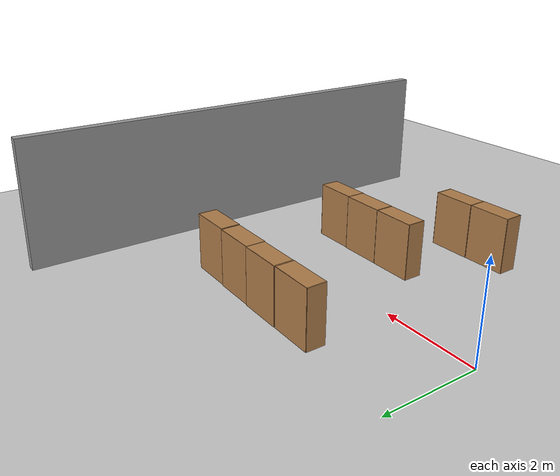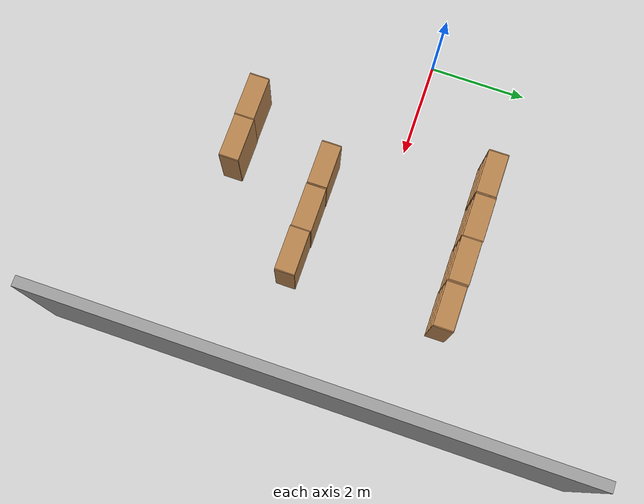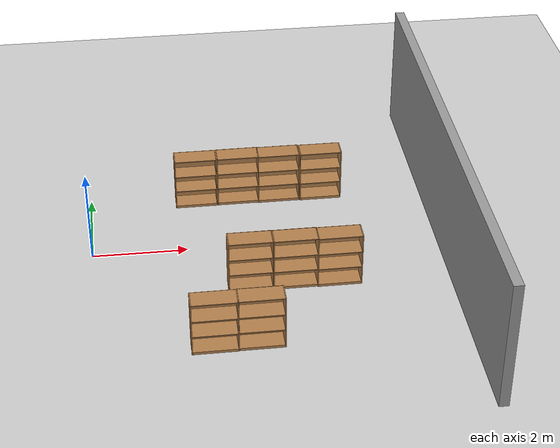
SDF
<sdf version="1.7">
 <world name="default">
  <model name="ground_plane">
   <static>1</static>
   <link name="link">
    <collision name="collision">
     <geometry><plane><normal>0 0 1</normal><size>100 100</size></plane></geometry>
     <surface><friction><ode><mu>100</mu><mu2>50</mu2></ode></friction></surface>
    </collision>
    <visual name="visual">
     <cast_shadows>0</cast_shadows>
     <geometry><plane><normal>0 0 1</normal><size>100 100</size></plane></geometry>
     <material>
      <script><uri>file://media/materials/scripts/gazebo.material</uri><name>Gazebo/Grey</name></script>
     </material>
    </visual>
   </link>
  </model>
  <model name="grey_wall_2_clone">
   <link name="link">
    <pose>-1.42165 -0.037006 1.4 0 -0 0</pose>
    <inertial>
     <inertia><ixx>0</ixx><ixy>0</ixy><ixz>0</ixz><iyy>0</iyy><iyz>0</iyz><izz>0</izz></inertia>
     <mass>0</mass>
    </inertial>
    <visual name="visual">
     <cast_shadows>0</cast_shadows>
     <geometry><box><size>10.349 0.2 2.8</size></box></geometry>
     <material>
      <script>
       <uri>model://grey_wall/materials/scripts</uri>
       <uri>model://grey_wall/materials/textures</uri>
       <name>vrc/grey_wall</name>
      </script>
      <shader type="pixel"/>
     </material>
    </visual>
    <collision name="collision">
     <geometry><box><size>10.349 0.2 2.8</size></box></geometry>
     <surface>
      <friction>
       <ode><mu>1</mu><mu2>1</mu2><fdir1>0 0 0</fdir1><slip1>0</slip1><slip2>0</slip2></ode>
       <torsional>
        <coefficient>1</coefficient>
        <patch_radius>0</patch_radius>
        <surface_radius>0</surface_radius>
        <use_patch_radius>1</use_patch_radius>
        <ode><slip>0</slip></ode>
       </torsional>
      </friction>
      <bounce><restitution_coefficient>0</restitution_coefficient><threshold>1e+06</threshold></bounce>
      <contact>
       <collide_without_contact>0</collide_without_contact>
       <collide_without_contact_bitmask>1</collide_without_contact_bitmask>
       <collide_bitmask>1</collide_bitmask>
       <ode>
        <soft_cfm>0</soft_cfm>
        <soft_erp>0.2</soft_erp>
        <kp>1e+13</kp>
        <kd>1</kd>
        <max_vel>0.01</max_vel>
        <min_depth>0</min_depth>
       </ode>
       <bullet>
        <split_impulse>1</split_impulse>
        <split_impulse_penetration_threshold>-0.01</split_impulse_penetration_threshold>
        <soft_cfm>0</soft_cfm>
        <soft_erp>0.2</soft_erp>
        <kp>1e+13</kp>
        <kd>1</kd>
       </bullet>
      </contact>
     </surface>
    </collision>
   </link>
   <static>1</static>
   <pose>7.44515 -1.72145 0 0 0 -1.56841</pose>
  </model>
  <model name="bookshelf_0_clone_0">
   <static>1</static>
   <link name="link">
    <inertial><mass>1</mass></inertial>
    <collision name="back">
     <pose>0 0.005 0.6 0 -0 0</pose>
     <geometry><box><size>0.9 0.01 1.2</size></box></geometry>
    </collision>
    <visual name="visual1">
     <pose>0 0.005 0.6 0 -0 0</pose>
     <geometry><box><size>0.9 0.01 1.2</size></box></geometry>
     <material>
      <script><uri>file://media/materials/scripts/gazebo.material</uri><name>Gazebo/Wood</name></script>
     </material>
    </visual>
    <collision name="left_side">
     <pose>0.45 -0.195 0.6 0 -0 0</pose>
     <geometry><box><size>0.02 0.4 1.2</size></box></geometry>
    </collision>
    <visual name="visual2">
     <pose>0.45 -0.195 0.6 0 -0 0</pose>
     <geometry><box><size>0.02 0.4 1.2</size></box></geometry>
     <material>
      <script><uri>file://media/materials/scripts/gazebo.material</uri><name>Gazebo/Wood</name></script>
     </material>
    </visual>
    <collision name="right_side">
     <pose>-0.45 -0.195 0.6 0 -0 0</pose>
     <geometry><box><size>0.02 0.4 1.2</size></box></geometry>
    </collision>
    <visual name="visual3">
     <pose>-0.45 -0.195 0.6 0 -0 0</pose>
     <geometry><box><size>0.02 0.4 1.2</size></box></geometry>
     <material>
      <script><uri>file://media/materials/scripts/gazebo.material</uri><name>Gazebo/Wood</name></script>
     </material>
    </visual>
    <collision name="bottom">
     <pose>0 -0.195 0.03 0 -0 0</pose>
     <geometry><box><size>0.88 0.4 0.06</size></box></geometry>
    </collision>
    <visual name="visual4">
     <pose>0 -0.195 0.03 0 -0 0</pose>
     <geometry><box><size>0.88 0.4 0.06</size></box></geometry>
     <material>
      <script><uri>file://media/materials/scripts/gazebo.material</uri><name>Gazebo/Wood</name></script>
     </material>
    </visual>
    <collision name="top">
     <pose>0 -0.195 1.19 0 -0 0</pose>
     <geometry><box><size>0.88 0.4 0.02</size></box></geometry>
    </collision>
    <visual name="visual5">
     <pose>0 -0.195 1.19 0 -0 0</pose>
     <geometry><box><size>0.88 0.4 0.02</size></box></geometry>
     <material>
      <script><uri>file://media/materials/scripts/gazebo.material</uri><name>Gazebo/Wood</name></script>
     </material>
    </visual>
    <collision name="low_shelf">
     <pose>0 -0.195 0.43 0 -0 0</pose>
     <geometry><box><size>0.88 0.4 0.02</size></box></geometry>
    </collision>
    <visual name="visual6">
     <pose>0 -0.195 0.43 0 -0 0</pose>
     <geometry><box><size>0.88 0.4 0.02</size></box></geometry>
     <material>
      <script><uri>file://media/materials/scripts/gazebo.material</uri><name>Gazebo/Wood</name></script>
     </material>
    </visual>
    <collision name="high_shelf">
     <pose>0 -0.195 0.8 0 -0 0</pose>
     <geometry><box><size>0.88 0.4 0.02</size></box></geometry>
    </collision>
    <visual name="visual7">
     <pose>0 -0.195 0.8 0 -0 0</pose>
     <geometry><box><size>0.88 0.4 0.02</size></box></geometry>
     <material>
      <script><uri>file://media/materials/scripts/gazebo.material</uri><name>Gazebo/Wood</name></script>
     </material>
    </visual>
   </link>
   <pose>2.31533 1.94487 0 0 -0 0</pose>
  </model>
  <model name="bookshelf_0_clone_1">
   <static>1</static>
   <link name="link">
    <inertial><mass>1</mass></inertial>
    <collision name="back">
     <pose>0 0.005 0.6 0 -0 0</pose>
     <geometry><box><size>0.9 0.01 1.2</size></box></geometry>
    </collision>
    <visual name="visual1">
     <pose>0 0.005 0.6 0 -0 0</pose>
     <geometry><box><size>0.9 0.01 1.2</size></box></geometry>
     <material>
      <script><uri>file://media/materials/scripts/gazebo.material</uri><name>Gazebo/Wood</name></script>
     </material>
    </visual>
    <collision name="left_side">
     <pose>0.45 -0.195 0.6 0 -0 0</pose>
     <geometry><box><size>0.02 0.4 1.2</size></box></geometry>
    </collision>
    <visual name="visual2">
     <pose>0.45 -0.195 0.6 0 -0 0</pose>
     <geometry><box><size>0.02 0.4 1.2</size></box></geometry>
     <material>
      <script><uri>file://media/materials/scripts/gazebo.material</uri><name>Gazebo/Wood</name></script>
     </material>
    </visual>
    <collision name="right_side">
     <pose>-0.45 -0.195 0.6 0 -0 0</pose>
     <geometry><box><size>0.02 0.4 1.2</size></box></geometry>
    </collision>
    <visual name="visual3">
     <pose>-0.45 -0.195 0.6 0 -0 0</pose>
     <geometry><box><size>0.02 0.4 1.2</size></box></geometry>
     <material>
      <script><uri>file://media/materials/scripts/gazebo.material</uri><name>Gazebo/Wood</name></script>
     </material>
    </visual>
    <collision name="bottom">
     <pose>0 -0.195 0.03 0 -0 0</pose>
     <geometry><box><size>0.88 0.4 0.06</size></box></geometry>
    </collision>
    <visual name="visual4">
     <pose>0 -0.195 0.03 0 -0 0</pose>
     <geometry><box><size>0.88 0.4 0.06</size></box></geometry>
     <material>
      <script><uri>file://media/materials/scripts/gazebo.material</uri><name>Gazebo/Wood</name></script>
     </material>
    </visual>
    <collision name="top">
     <pose>0 -0.195 1.19 0 -0 0</pose>
     <geometry><box><size>0.88 0.4 0.02</size></box></geometry>
    </collision>
    <visual name="visual5">
     <pose>0 -0.195 1.19 0 -0 0</pose>
     <geometry><box><size>0.88 0.4 0.02</size></box></geometry>
     <material>
      <script><uri>file://media/materials/scripts/gazebo.material</uri><name>Gazebo/Wood</name></script>
     </material>
    </visual>
    <collision name="low_shelf">
     <pose>0 -0.195 0.43 0 -0 0</pose>
     <geometry><box><size>0.88 0.4 0.02</size></box></geometry>
    </collision>
    <visual name="visual6">
     <pose>0 -0.195 0.43 0 -0 0</pose>
     <geometry><box><size>0.88 0.4 0.02</size></box></geometry>
     <material>
      <script><uri>file://media/materials/scripts/gazebo.material</uri><name>Gazebo/Wood</name></script>
     </material>
    </visual>
    <collision name="high_shelf">
     <pose>0 -0.195 0.8 0 -0 0</pose>
     <geometry><box><size>0.88 0.4 0.02</size></box></geometry>
    </collision>
    <visual name="visual7">
     <pose>0 -0.195 0.8 0 -0 0</pose>
     <geometry><box><size>0.88 0.4 0.02</size></box></geometry>
     <material>
      <script><uri>file://media/materials/scripts/gazebo.material</uri><name>Gazebo/Wood</name></script>
     </material>
    </visual>
   </link>
   <pose>3.23601 1.95093 0 0 -0 0</pose>
  </model>
  <model name="bookshelf_0_clone_2">
   <static>1</static>
   <link name="link">
    <inertial><mass>1</mass></inertial>
    <collision name="back">
     <pose>0 0.005 0.6 0 -0 0</pose>
     <geometry><box><size>0.9 0.01 1.2</size></box></geometry>
    </collision>
    <visual name="visual1">
     <pose>0 0.005 0.6 0 -0 0</pose>
     <geometry><box><size>0.9 0.01 1.2</size></box></geometry>
     <material>
      <script><uri>file://media/materials/scripts/gazebo.material</uri><name>Gazebo/Wood</name></script>
     </material>
    </visual>
    <collision name="left_side">
     <pose>0.45 -0.195 0.6 0 -0 0</pose>
     <geometry><box><size>0.02 0.4 1.2</size></box></geometry>
    </collision>
    <visual name="visual2">
     <pose>0.45 -0.195 0.6 0 -0 0</pose>
     <geometry><box><size>0.02 0.4 1.2</size></box></geometry>
     <material>
      <script><uri>file://media/materials/scripts/gazebo.material</uri><name>Gazebo/Wood</name></script>
     </material>
    </visual>
    <collision name="right_side">
     <pose>-0.45 -0.195 0.6 0 -0 0</pose>
     <geometry><box><size>0.02 0.4 1.2</size></box></geometry>
    </collision>
    <visual name="visual3">
     <pose>-0.45 -0.195 0.6 0 -0 0</pose>
     <geometry><box><size>0.02 0.4 1.2</size></box></geometry>
     <material>
      <script><uri>file://media/materials/scripts/gazebo.material</uri><name>Gazebo/Wood</name></script>
     </material>
    </visual>
    <collision name="bottom">
     <pose>0 -0.195 0.03 0 -0 0</pose>
     <geometry><box><size>0.88 0.4 0.06</size></box></geometry>
    </collision>
    <visual name="visual4">
     <pose>0 -0.195 0.03 0 -0 0</pose>
     <geometry><box><size>0.88 0.4 0.06</size></box></geometry>
     <material>
      <script><uri>file://media/materials/scripts/gazebo.material</uri><name>Gazebo/Wood</name></script>
     </material>
    </visual>
    <collision name="top">
     <pose>0 -0.195 1.19 0 -0 0</pose>
     <geometry><box><size>0.88 0.4 0.02</size></box></geometry>
    </collision>
    <visual name="visual5">
     <pose>0 -0.195 1.19 0 -0 0</pose>
     <geometry><box><size>0.88 0.4 0.02</size></box></geometry>
     <material>
      <script><uri>file://media/materials/scripts/gazebo.material</uri><name>Gazebo/Wood</name></script>
     </material>
    </visual>
    <collision name="low_shelf">
     <pose>0 -0.195 0.43 0 -0 0</pose>
     <geometry><box><size>0.88 0.4 0.02</size></box></geometry>
    </collision>
    <visual name="visual6">
     <pose>0 -0.195 0.43 0 -0 0</pose>
     <geometry><box><size>0.88 0.4 0.02</size></box></geometry>
     <material>
      <script><uri>file://media/materials/scripts/gazebo.material</uri><name>Gazebo/Wood</name></script>
     </material>
    </visual>
    <collision name="high_shelf">
     <pose>0 -0.195 0.8 0 -0 0</pose>
     <geometry><box><size>0.88 0.4 0.02</size></box></geometry>
    </collision>
    <visual name="visual7">
     <pose>0 -0.195 0.8 0 -0 0</pose>
     <geometry><box><size>0.88 0.4 0.02</size></box></geometry>
     <material>
      <script><uri>file://media/materials/scripts/gazebo.material</uri><name>Gazebo/Wood</name></script>
     </material>
    </visual>
   </link>
   <pose>4.13486 1.93847 0 0 -0 0</pose>
  </model>
  <model name="bookshelf_0_clone_3">
   <static>1</static>
   <link name="link">
    <inertial><mass>1</mass></inertial>
    <collision name="back">
     <pose>0 0.005 0.6 0 -0 0</pose>
     <geometry><box><size>0.9 0.01 1.2</size></box></geometry>
    </collision>
    <visual name="visual1">
     <pose>0 0.005 0.6 0 -0 0</pose>
     <geometry><box><size>0.9 0.01 1.2</size></box></geometry>
     <material>
      <script><uri>file://media/materials/scripts/gazebo.material</uri><name>Gazebo/Wood</name></script>
     </material>
    </visual>
    <collision name="left_side">
     <pose>0.45 -0.195 0.6 0 -0 0</pose>
     <geometry><box><size>0.02 0.4 1.2</size></box></geometry>
    </collision>
    <visual name="visual2">
     <pose>0.45 -0.195 0.6 0 -0 0</pose>
     <geometry><box><size>0.02 0.4 1.2</size></box></geometry>
     <material>
      <script><uri>file://media/materials/scripts/gazebo.material</uri><name>Gazebo/Wood</name></script>
     </material>
    </visual>
    <collision name="right_side">
     <pose>-0.45 -0.195 0.6 0 -0 0</pose>
     <geometry><box><size>0.02 0.4 1.2</size></box></geometry>
    </collision>
    <visual name="visual3">
     <pose>-0.45 -0.195 0.6 0 -0 0</pose>
     <geometry><box><size>0.02 0.4 1.2</size></box></geometry>
     <material>
      <script><uri>file://media/materials/scripts/gazebo.material</uri><name>Gazebo/Wood</name></script>
     </material>
    </visual>
    <collision name="bottom">
     <pose>0 -0.195 0.03 0 -0 0</pose>
     <geometry><box><size>0.88 0.4 0.06</size></box></geometry>
    </collision>
    <visual name="visual4">
     <pose>0 -0.195 0.03 0 -0 0</pose>
     <geometry><box><size>0.88 0.4 0.06</size></box></geometry>
     <material>
      <script><uri>file://media/materials/scripts/gazebo.material</uri><name>Gazebo/Wood</name></script>
     </material>
    </visual>
    <collision name="top">
     <pose>0 -0.195 1.19 0 -0 0</pose>
     <geometry><box><size>0.88 0.4 0.02</size></box></geometry>
    </collision>
    <visual name="visual5">
     <pose>0 -0.195 1.19 0 -0 0</pose>
     <geometry><box><size>0.88 0.4 0.02</size></box></geometry>
     <material>
      <script><uri>file://media/materials/scripts/gazebo.material</uri><name>Gazebo/Wood</name></script>
     </material>
    </visual>
    <collision name="low_shelf">
     <pose>0 -0.195 0.43 0 -0 0</pose>
     <geometry><box><size>0.88 0.4 0.02</size></box></geometry>
    </collision>
    <visual name="visual6">
     <pose>0 -0.195 0.43 0 -0 0</pose>
     <geometry><box><size>0.88 0.4 0.02</size></box></geometry>
     <material>
      <script><uri>file://media/materials/scripts/gazebo.material</uri><name>Gazebo/Wood</name></script>
     </material>
    </visual>
    <collision name="high_shelf">
     <pose>0 -0.195 0.8 0 -0 0</pose>
     <geometry><box><size>0.88 0.4 0.02</size></box></geometry>
    </collision>
    <visual name="visual7">
     <pose>0 -0.195 0.8 0 -0 0</pose>
     <geometry><box><size>0.88 0.4 0.02</size></box></geometry>
     <material>
      <script><uri>file://media/materials/scripts/gazebo.material</uri><name>Gazebo/Wood</name></script>
     </material>
    </visual>
   </link>
   <pose>5.06003 1.92327 0 0 -0 0</pose>
  </model>
  <model name="bookshelf_0_clone_8">
   <static>1</static>
   <link name="link">
    <inertial><mass>1</mass></inertial>
    <collision name="back">
     <pose>0 0.005 0.6 0 -0 0</pose>
     <geometry><box><size>0.9 0.01 1.2</size></box></geometry>
    </collision>
    <visual name="visual1">
     <pose>0 0.005 0.6 0 -0 0</pose>
     <geometry><box><size>0.9 0.01 1.2</size></box></geometry>
     <material>
      <script><uri>file://media/materials/scripts/gazebo.material</uri><name>Gazebo/Wood</name></script>
     </material>
    </visual>
    <collision name="left_side">
     <pose>0.45 -0.195 0.6 0 -0 0</pose>
     <geometry><box><size>0.02 0.4 1.2</size></box></geometry>
    </collision>
    <visual name="visual2">
     <pose>0.45 -0.195 0.6 0 -0 0</pose>
     <geometry><box><size>0.02 0.4 1.2</size></box></geometry>
     <material>
      <script><uri>file://media/materials/scripts/gazebo.material</uri><name>Gazebo/Wood</name></script>
     </material>
    </visual>
    <collision name="right_side">
     <pose>-0.45 -0.195 0.6 0 -0 0</pose>
     <geometry><box><size>0.02 0.4 1.2</size></box></geometry>
    </collision>
    <visual name="visual3">
     <pose>-0.45 -0.195 0.6 0 -0 0</pose>
     <geometry><box><size>0.02 0.4 1.2</size></box></geometry>
     <material>
      <script><uri>file://media/materials/scripts/gazebo.material</uri><name>Gazebo/Wood</name></script>
     </material>
    </visual>
    <collision name="bottom">
     <pose>0 -0.195 0.03 0 -0 0</pose>
     <geometry><box><size>0.88 0.4 0.06</size></box></geometry>
    </collision>
    <visual name="visual4">
     <pose>0 -0.195 0.03 0 -0 0</pose>
     <geometry><box><size>0.88 0.4 0.06</size></box></geometry>
     <material>
      <script><uri>file://media/materials/scripts/gazebo.material</uri><name>Gazebo/Wood</name></script>
     </material>
    </visual>
    <collision name="top">
     <pose>0 -0.195 1.19 0 -0 0</pose>
     <geometry><box><size>0.88 0.4 0.02</size></box></geometry>
    </collision>
    <visual name="visual5">
     <pose>0 -0.195 1.19 0 -0 0</pose>
     <geometry><box><size>0.88 0.4 0.02</size></box></geometry>
     <material>
      <script><uri>file://media/materials/scripts/gazebo.material</uri><name>Gazebo/Wood</name></script>
     </material>
    </visual>
    <collision name="low_shelf">
     <pose>0 -0.195 0.43 0 -0 0</pose>
     <geometry><box><size>0.88 0.4 0.02</size></box></geometry>
    </collision>
    <visual name="visual6">
     <pose>0 -0.195 0.43 0 -0 0</pose>
     <geometry><box><size>0.88 0.4 0.02</size></box></geometry>
     <material>
      <script><uri>file://media/materials/scripts/gazebo.material</uri><name>Gazebo/Wood</name></script>
     </material>
    </visual>
    <collision name="high_shelf">
     <pose>0 -0.195 0.8 0 -0 0</pose>
     <geometry><box><size>0.88 0.4 0.02</size></box></geometry>
    </collision>
    <visual name="visual7">
     <pose>0 -0.195 0.8 0 -0 0</pose>
     <geometry><box><size>0.88 0.4 0.02</size></box></geometry>
     <material>
      <script><uri>file://media/materials/scripts/gazebo.material</uri><name>Gazebo/Wood</name></script>
     </material>
    </visual>
   </link>
   <pose>3.19551 -1.17248 0 0 -0 0</pose>
  </model>
  <model name="bookshelf_0_clone_9">
   <static>1</static>
   <link name="link">
    <inertial><mass>1</mass></inertial>
    <collision name="back">
     <pose>0 0.005 0.6 0 -0 0</pose>
     <geometry><box><size>0.9 0.01 1.2</size></box></geometry>
    </collision>
    <visual name="visual1">
     <pose>0 0.005 0.6 0 -0 0</pose>
     <geometry><box><size>0.9 0.01 1.2</size></box></geometry>
     <material>
      <script><uri>file://media/materials/scripts/gazebo.material</uri><name>Gazebo/Wood</name></script>
     </material>
    </visual>
    <collision name="left_side">
     <pose>0.45 -0.195 0.6 0 -0 0</pose>
     <geometry><box><size>0.02 0.4 1.2</size></box></geometry>
    </collision>
    <visual name="visual2">
     <pose>0.45 -0.195 0.6 0 -0 0</pose>
     <geometry><box><size>0.02 0.4 1.2</size></box></geometry>
     <material>
      <script><uri>file://media/materials/scripts/gazebo.material</uri><name>Gazebo/Wood</name></script>
     </material>
    </visual>
    <collision name="right_side">
     <pose>-0.45 -0.195 0.6 0 -0 0</pose>
     <geometry><box><size>0.02 0.4 1.2</size></box></geometry>
    </collision>
    <visual name="visual3">
     <pose>-0.45 -0.195 0.6 0 -0 0</pose>
     <geometry><box><size>0.02 0.4 1.2</size></box></geometry>
     <material>
      <script><uri>file://media/materials/scripts/gazebo.material</uri><name>Gazebo/Wood</name></script>
     </material>
    </visual>
    <collision name="bottom">
     <pose>0 -0.195 0.03 0 -0 0</pose>
     <geometry><box><size>0.88 0.4 0.06</size></box></geometry>
    </collision>
    <visual name="visual4">
     <pose>0 -0.195 0.03 0 -0 0</pose>
     <geometry><box><size>0.88 0.4 0.06</size></box></geometry>
     <material>
      <script><uri>file://media/materials/scripts/gazebo.material</uri><name>Gazebo/Wood</name></script>
     </material>
    </visual>
    <collision name="top">
     <pose>0 -0.195 1.19 0 -0 0</pose>
     <geometry><box><size>0.88 0.4 0.02</size></box></geometry>
    </collision>
    <visual name="visual5">
     <pose>0 -0.195 1.19 0 -0 0</pose>
     <geometry><box><size>0.88 0.4 0.02</size></box></geometry>
     <material>
      <script><uri>file://media/materials/scripts/gazebo.material</uri><name>Gazebo/Wood</name></script>
     </material>
    </visual>
    <collision name="low_shelf">
     <pose>0 -0.195 0.43 0 -0 0</pose>
     <geometry><box><size>0.88 0.4 0.02</size></box></geometry>
    </collision>
    <visual name="visual6">
     <pose>0 -0.195 0.43 0 -0 0</pose>
     <geometry><box><size>0.88 0.4 0.02</size></box></geometry>
     <material>
      <script><uri>file://media/materials/scripts/gazebo.material</uri><name>Gazebo/Wood</name></script>
     </material>
    </visual>
    <collision name="high_shelf">
     <pose>0 -0.195 0.8 0 -0 0</pose>
     <geometry><box><size>0.88 0.4 0.02</size></box></geometry>
    </collision>
    <visual name="visual7">
     <pose>0 -0.195 0.8 0 -0 0</pose>
     <geometry><box><size>0.88 0.4 0.02</size></box></geometry>
     <material>
      <script><uri>file://media/materials/scripts/gazebo.material</uri><name>Gazebo/Wood</name></script>
     </material>
    </visual>
   </link>
   <pose>4.10914 -1.17806 0 0 -0 0</pose>
  </model>
  <model name="bookshelf_0_clone_10">
   <static>1</static>
   <link name="link">
    <inertial><mass>1</mass></inertial>
    <collision name="back">
     <pose>0 0.005 0.6 0 -0 0</pose>
     <geometry><box><size>0.9 0.01 1.2</size></box></geometry>
    </collision>
    <visual name="visual1">
     <pose>0 0.005 0.6 0 -0 0</pose>
     <geometry><box><size>0.9 0.01 1.2</size></box></geometry>
     <material>
      <script><uri>file://media/materials/scripts/gazebo.material</uri><name>Gazebo/Wood</name></script>
     </material>
    </visual>
    <collision name="left_side">
     <pose>0.45 -0.195 0.6 0 -0 0</pose>
     <geometry><box><size>0.02 0.4 1.2</size></box></geometry>
    </collision>
    <visual name="visual2">
     <pose>0.45 -0.195 0.6 0 -0 0</pose>
     <geometry><box><size>0.02 0.4 1.2</size></box></geometry>
     <material>
      <script><uri>file://media/materials/scripts/gazebo.material</uri><name>Gazebo/Wood</name></script>
     </material>
    </visual>
    <collision name="right_side">
     <pose>-0.45 -0.195 0.6 0 -0 0</pose>
     <geometry><box><size>0.02 0.4 1.2</size></box></geometry>
    </collision>
    <visual name="visual3">
     <pose>-0.45 -0.195 0.6 0 -0 0</pose>
     <geometry><box><size>0.02 0.4 1.2</size></box></geometry>
     <material>
      <script><uri>file://media/materials/scripts/gazebo.material</uri><name>Gazebo/Wood</name></script>
     </material>
    </visual>
    <collision name="bottom">
     <pose>0 -0.195 0.03 0 -0 0</pose>
     <geometry><box><size>0.88 0.4 0.06</size></box></geometry>
    </collision>
    <visual name="visual4">
     <pose>0 -0.195 0.03 0 -0 0</pose>
     <geometry><box><size>0.88 0.4 0.06</size></box></geometry>
     <material>
      <script><uri>file://media/materials/scripts/gazebo.material</uri><name>Gazebo/Wood</name></script>
     </material>
    </visual>
    <collision name="top">
     <pose>0 -0.195 1.19 0 -0 0</pose>
     <geometry><box><size>0.88 0.4 0.02</size></box></geometry>
    </collision>
    <visual name="visual5">
     <pose>0 -0.195 1.19 0 -0 0</pose>
     <geometry><box><size>0.88 0.4 0.02</size></box></geometry>
     <material>
      <script><uri>file://media/materials/scripts/gazebo.material</uri><name>Gazebo/Wood</name></script>
     </material>
    </visual>
    <collision name="low_shelf">
     <pose>0 -0.195 0.43 0 -0 0</pose>
     <geometry><box><size>0.88 0.4 0.02</size></box></geometry>
    </collision>
    <visual name="visual6">
     <pose>0 -0.195 0.43 0 -0 0</pose>
     <geometry><box><size>0.88 0.4 0.02</size></box></geometry>
     <material>
      <script><uri>file://media/materials/scripts/gazebo.material</uri><name>Gazebo/Wood</name></script>
     </material>
    </visual>
    <collision name="high_shelf">
     <pose>0 -0.195 0.8 0 -0 0</pose>
     <geometry><box><size>0.88 0.4 0.02</size></box></geometry>
    </collision>
    <visual name="visual7">
     <pose>0 -0.195 0.8 0 -0 0</pose>
     <geometry><box><size>0.88 0.4 0.02</size></box></geometry>
     <material>
      <script><uri>file://media/materials/scripts/gazebo.material</uri><name>Gazebo/Wood</name></script>
     </material>
    </visual>
   </link>
   <pose>5.00875 -1.19371 0 0 -0 0</pose>
  </model>
  <model name="bookshelf_0_clone_12">
   <static>1</static>
   <link name="link">
    <inertial><mass>1</mass></inertial>
    <collision name="back">
     <pose>0 0.005 0.6 0 -0 0</pose>
     <geometry><box><size>0.9 0.01 1.2</size></box></geometry>
    </collision>
    <visual name="visual1">
     <pose>0 0.005 0.6 0 -0 0</pose>
     <geometry><box><size>0.9 0.01 1.2</size></box></geometry>
     <material>
      <script><uri>file://media/materials/scripts/gazebo.material</uri><name>Gazebo/Wood</name></script>
     </material>
    </visual>
    <collision name="left_side">
     <pose>0.45 -0.195 0.6 0 -0 0</pose>
     <geometry><box><size>0.02 0.4 1.2</size></box></geometry>
    </collision>
    <visual name="visual2">
     <pose>0.45 -0.195 0.6 0 -0 0</pose>
     <geometry><box><size>0.02 0.4 1.2</size></box></geometry>
     <material>
      <script><uri>file://media/materials/scripts/gazebo.material</uri><name>Gazebo/Wood</name></script>
     </material>
    </visual>
    <collision name="right_side">
     <pose>-0.45 -0.195 0.6 0 -0 0</pose>
     <geometry><box><size>0.02 0.4 1.2</size></box></geometry>
    </collision>
    <visual name="visual3">
     <pose>-0.45 -0.195 0.6 0 -0 0</pose>
     <geometry><box><size>0.02 0.4 1.2</size></box></geometry>
     <material>
      <script><uri>file://media/materials/scripts/gazebo.material</uri><name>Gazebo/Wood</name></script>
     </material>
    </visual>
    <collision name="bottom">
     <pose>0 -0.195 0.03 0 -0 0</pose>
     <geometry><box><size>0.88 0.4 0.06</size></box></geometry>
    </collision>
    <visual name="visual4">
     <pose>0 -0.195 0.03 0 -0 0</pose>
     <geometry><box><size>0.88 0.4 0.06</size></box></geometry>
     <material>
      <script><uri>file://media/materials/scripts/gazebo.material</uri><name>Gazebo/Wood</name></script>
     </material>
    </visual>
    <collision name="top">
     <pose>0 -0.195 1.19 0 -0 0</pose>
     <geometry><box><size>0.88 0.4 0.02</size></box></geometry>
    </collision>
    <visual name="visual5">
     <pose>0 -0.195 1.19 0 -0 0</pose>
     <geometry><box><size>0.88 0.4 0.02</size></box></geometry>
     <material>
      <script><uri>file://media/materials/scripts/gazebo.material</uri><name>Gazebo/Wood</name></script>
     </material>
    </visual>
    <collision name="low_shelf">
     <pose>0 -0.195 0.43 0 -0 0</pose>
     <geometry><box><size>0.88 0.4 0.02</size></box></geometry>
    </collision>
    <visual name="visual6">
     <pose>0 -0.195 0.43 0 -0 0</pose>
     <geometry><box><size>0.88 0.4 0.02</size></box></geometry>
     <material>
      <script><uri>file://media/materials/scripts/gazebo.material</uri><name>Gazebo/Wood</name></script>
     </material>
    </visual>
    <collision name="high_shelf">
     <pose>0 -0.195 0.8 0 -0 0</pose>
     <geometry><box><size>0.88 0.4 0.02</size></box></geometry>
    </collision>
    <visual name="visual7">
     <pose>0 -0.195 0.8 0 -0 0</pose>
     <geometry><box><size>0.88 0.4 0.02</size></box></geometry>
     <material>
      <script><uri>file://media/materials/scripts/gazebo.material</uri><name>Gazebo/Wood</name></script>
     </material>
    </visual>
   </link>
   <pose>2.31732 -2.9777 0 0 -0 0</pose>
  </model>
  <model name="bookshelf_0_clone_13">
   <static>1</static>
   <link name="link">
    <inertial><mass>1</mass></inertial>
    <collision name="back">
     <pose>0 0.005 0.6 0 -0 0</pose>
     <geometry><box><size>0.9 0.01 1.2</size></box></geometry>
    </collision>
    <visual name="visual1">
     <pose>0 0.005 0.6 0 -0 0</pose>
     <geometry><box><size>0.9 0.01 1.2</size></box></geometry>
     <material>
      <script><uri>file://media/materials/scripts/gazebo.material</uri><name>Gazebo/Wood</name></script>
     </material>
    </visual>
    <collision name="left_side">
     <pose>0.45 -0.195 0.6 0 -0 0</pose>
     <geometry><box><size>0.02 0.4 1.2</size></box></geometry>
    </collision>
    <visual name="visual2">
     <pose>0.45 -0.195 0.6 0 -0 0</pose>
     <geometry><box><size>0.02 0.4 1.2</size></box></geometry>
     <material>
      <script><uri>file://media/materials/scripts/gazebo.material</uri><name>Gazebo/Wood</name></script>
     </material>
    </visual>
    <collision name="right_side">
     <pose>-0.45 -0.195 0.6 0 -0 0</pose>
     <geometry><box><size>0.02 0.4 1.2</size></box></geometry>
    </collision>
    <visual name="visual3">
     <pose>-0.45 -0.195 0.6 0 -0 0</pose>
     <geometry><box><size>0.02 0.4 1.2</size></box></geometry>
     <material>
      <script><uri>file://media/materials/scripts/gazebo.material</uri><name>Gazebo/Wood</name></script>
     </material>
    </visual>
    <collision name="bottom">
     <pose>0 -0.195 0.03 0 -0 0</pose>
     <geometry><box><size>0.88 0.4 0.06</size></box></geometry>
    </collision>
    <visual name="visual4">
     <pose>0 -0.195 0.03 0 -0 0</pose>
     <geometry><box><size>0.88 0.4 0.06</size></box></geometry>
     <material>
      <script><uri>file://media/materials/scripts/gazebo.material</uri><name>Gazebo/Wood</name></script>
     </material>
    </visual>
    <collision name="top">
     <pose>0 -0.195 1.19 0 -0 0</pose>
     <geometry><box><size>0.88 0.4 0.02</size></box></geometry>
    </collision>
    <visual name="visual5">
     <pose>0 -0.195 1.19 0 -0 0</pose>
     <geometry><box><size>0.88 0.4 0.02</size></box></geometry>
     <material>
      <script><uri>file://media/materials/scripts/gazebo.material</uri><name>Gazebo/Wood</name></script>
     </material>
    </visual>
    <collision name="low_shelf">
     <pose>0 -0.195 0.43 0 -0 0</pose>
     <geometry><box><size>0.88 0.4 0.02</size></box></geometry>
    </collision>
    <visual name="visual6">
     <pose>0 -0.195 0.43 0 -0 0</pose>
     <geometry><box><size>0.88 0.4 0.02</size></box></geometry>
     <material>
      <script><uri>file://media/materials/scripts/gazebo.material</uri><name>Gazebo/Wood</name></script>
     </material>
    </visual>
    <collision name="high_shelf">
     <pose>0 -0.195 0.8 0 -0 0</pose>
     <geometry><box><size>0.88 0.4 0.02</size></box></geometry>
    </collision>
    <visual name="visual7">
     <pose>0 -0.195 0.8 0 -0 0</pose>
     <geometry><box><size>0.88 0.4 0.02</size></box></geometry>
     <material>
      <script><uri>file://media/materials/scripts/gazebo.material</uri><name>Gazebo/Wood</name></script>
     </material>
    </visual>
   </link>
   <pose>3.2204 -2.96829 0 0 -0 0</pose>
  </model>
 </world>
</sdf>
